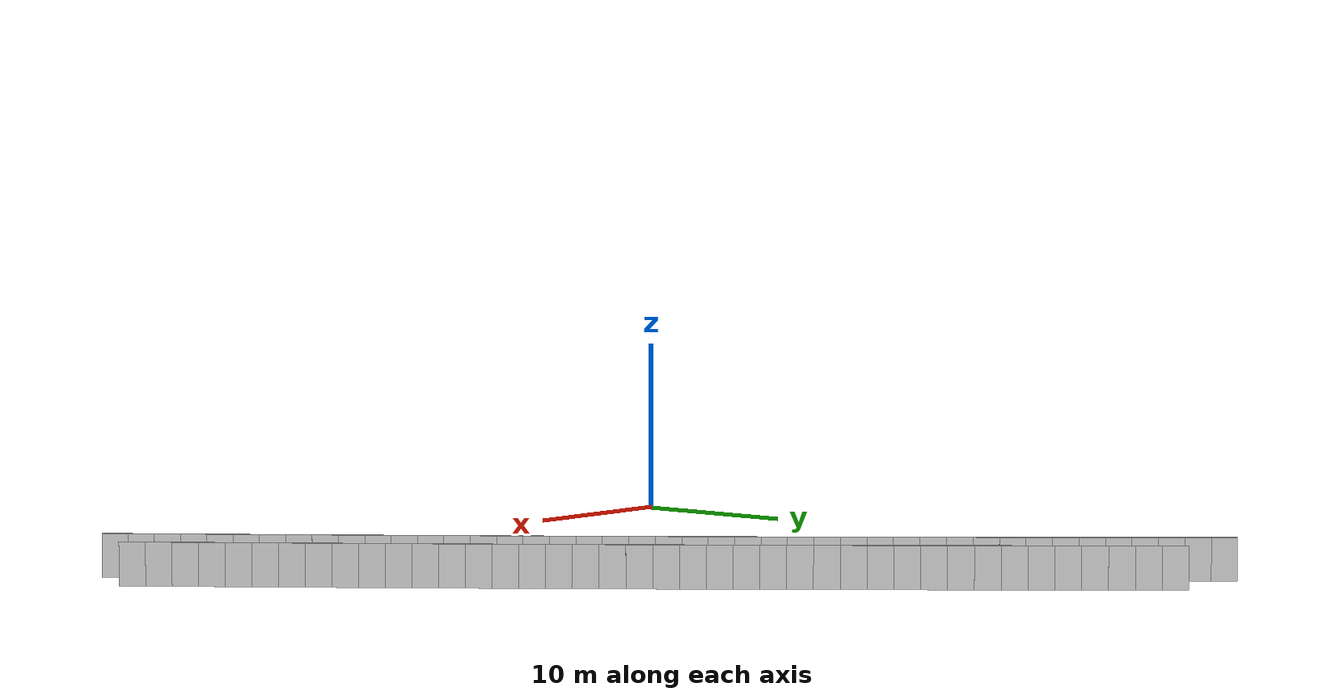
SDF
<?xml version="1.0" ?>
<sdf version="1.6">
  <model name="sps_4139">
    <pose frame="">0 0 0 0 -0 0</pose>
    <static>1</static>
    <self_collide>0</self_collide>
    <allow_auto_disable>0</allow_auto_disable>
    <link name="Wall10326">
      <kinematic>0</kinematic>
      <gravity>1</gravity>
      <self_collide>0</self_collide>
      <collision name="collision">
        <geometry>
          <box>
            <size>1.49655 0.15 2.5</size>
          </box>
        </geometry>
        <pose frame="">0 0 0 0 -0 0</pose>
      </collision>
      <visual name="visual">
        <geometry>
          <box>
            <size>1.49655 0.15 2.5</size>
          </box>
        </geometry>
        <pose frame="">0 0 0 0 -0 0</pose>
        <cast_shadows>1</cast_shadows>
        <transparency>0.0</transparency>
      </visual>
      <pose frame="">47.2911 0.43019 1.25 0 -0 2.211</pose>
    </link>
    <link name="Wall10327">
      <kinematic>0</kinematic>
      <gravity>1</gravity>
      <self_collide>0</self_collide>
      <collision name="collision">
        <geometry>
          <box>
            <size>1.49638 0.15 2.5</size>
          </box>
        </geometry>
        <pose frame="">0 0 0 0 -0 0</pose>
      </collision>
      <visual name="visual">
        <geometry>
          <box>
            <size>1.49638 0.15 2.5</size>
          </box>
        </geometry>
        <pose frame="">0 0 0 0 -0 0</pose>
        <cast_shadows>1</cast_shadows>
        <transparency>0.0</transparency>
      </visual>
      <pose frame="">46.3962 1.62959 1.25 0 -0 2.21262</pose>
    </link>
    <link name="Wall10328">
      <kinematic>0</kinematic>
      <gravity>1</gravity>
      <self_collide>0</self_collide>
      <collision name="collision">
        <geometry>
          <box>
            <size>1.49661 0.15 2.5</size>
          </box>
        </geometry>
        <pose frame="">0 0 0 0 -0 0</pose>
      </collision>
      <visual name="visual">
        <geometry>
          <box>
            <size>1.49661 0.15 2.5</size>
          </box>
        </geometry>
        <pose frame="">0 0 0 0 -0 0</pose>
        <cast_shadows>1</cast_shadows>
        <transparency>0.0</transparency>
      </visual>
      <pose frame="">45.4994 2.82759 1.25 0 -0 2.21418</pose>
    </link>
    <link name="Wall10329">
      <kinematic>0</kinematic>
      <gravity>1</gravity>
      <self_collide>0</self_collide>
      <collision name="collision">
        <geometry>
          <box>
            <size>1.49655 0.15 2.5</size>
          </box>
        </geometry>
        <pose frame="">0 0 0 0 -0 0</pose>
      </collision>
      <visual name="visual">
        <geometry>
          <box>
            <size>1.49655 0.15 2.5</size>
          </box>
        </geometry>
        <pose frame="">0 0 0 0 -0 0</pose>
        <cast_shadows>1</cast_shadows>
        <transparency>0.0</transparency>
      </visual>
      <pose frame="">44.6006 4.02428 1.25 0 -0 2.21569</pose>
    </link>
    <link name="Wall10330">
      <kinematic>0</kinematic>
      <gravity>1</gravity>
      <self_collide>0</self_collide>
      <collision name="collision">
        <geometry>
          <box>
            <size>1.49649 0.15 2.5</size>
          </box>
        </geometry>
        <pose frame="">0 0 0 0 -0 0</pose>
      </collision>
      <visual name="visual">
        <geometry>
          <box>
            <size>1.49649 0.15 2.5</size>
          </box>
        </geometry>
        <pose frame="">0 0 0 0 -0 0</pose>
        <cast_shadows>1</cast_shadows>
        <transparency>0.0</transparency>
      </visual>
      <pose frame="">43.7 5.21947 1.25 0 -0 2.21741</pose>
    </link>
    <link name="Wall10331">
      <kinematic>0</kinematic>
      <gravity>1</gravity>
      <self_collide>0</self_collide>
      <collision name="collision">
        <geometry>
          <box>
            <size>1.49649 0.15 2.5</size>
          </box>
        </geometry>
        <pose frame="">0 0 0 0 -0 0</pose>
      </collision>
      <visual name="visual">
        <geometry>
          <box>
            <size>1.49649 0.15 2.5</size>
          </box>
        </geometry>
        <pose frame="">0 0 0 0 -0 0</pose>
        <cast_shadows>1</cast_shadows>
        <transparency>0.0</transparency>
      </visual>
      <pose frame="">42.7975 6.41319 1.25 0 -0 2.21889</pose>
    </link>
    <link name="Wall10332">
      <kinematic>0</kinematic>
      <gravity>1</gravity>
      <self_collide>0</self_collide>
      <collision name="collision">
        <geometry>
          <box>
            <size>1.49643 0.15 2.5</size>
          </box>
        </geometry>
        <pose frame="">0 0 0 0 -0 0</pose>
      </collision>
      <visual name="visual">
        <geometry>
          <box>
            <size>1.49643 0.15 2.5</size>
          </box>
        </geometry>
        <pose frame="">0 0 0 0 -0 0</pose>
        <cast_shadows>1</cast_shadows>
        <transparency>0.0</transparency>
      </visual>
      <pose frame="">41.8932 7.60551 1.25 0 -0 2.22046</pose>
    </link>
    <link name="Wall10333">
      <kinematic>0</kinematic>
      <gravity>1</gravity>
      <self_collide>0</self_collide>
      <collision name="collision">
        <geometry>
          <box>
            <size>1.49649 0.15 2.5</size>
          </box>
        </geometry>
        <pose frame="">0 0 0 0 -0 0</pose>
      </collision>
      <visual name="visual">
        <geometry>
          <box>
            <size>1.49649 0.15 2.5</size>
          </box>
        </geometry>
        <pose frame="">0 0 0 0 -0 0</pose>
        <cast_shadows>1</cast_shadows>
        <transparency>0.0</transparency>
      </visual>
      <pose frame="">40.9871 8.7964 1.25 0 -0 2.22206</pose>
    </link>
    <link name="Wall10334">
      <kinematic>0</kinematic>
      <gravity>1</gravity>
      <self_collide>0</self_collide>
      <collision name="collision">
        <geometry>
          <box>
            <size>1.49664 0.15 2.5</size>
          </box>
        </geometry>
        <pose frame="">0 0 0 0 -0 0</pose>
      </collision>
      <visual name="visual">
        <geometry>
          <box>
            <size>1.49664 0.15 2.5</size>
          </box>
        </geometry>
        <pose frame="">0 0 0 0 -0 0</pose>
        <cast_shadows>1</cast_shadows>
        <transparency>0.0</transparency>
      </visual>
      <pose frame="">40.0788 9.98588 1.25 0 -0 2.22373</pose>
    </link>
    <link name="Wall10335">
      <kinematic>0</kinematic>
      <gravity>1</gravity>
      <self_collide>0</self_collide>
      <collision name="collision">
        <geometry>
          <box>
            <size>1.49642 0.15 2.5</size>
          </box>
        </geometry>
        <pose frame="">0 0 0 0 -0 0</pose>
      </collision>
      <visual name="visual">
        <geometry>
          <box>
            <size>1.49642 0.15 2.5</size>
          </box>
        </geometry>
        <pose frame="">0 0 0 0 -0 0</pose>
        <cast_shadows>1</cast_shadows>
        <transparency>0.0</transparency>
      </visual>
      <pose frame="">39.1688 11.1739 1.25 0 -0 2.22529</pose>
    </link>
    <link name="Wall10336">
      <kinematic>0</kinematic>
      <gravity>1</gravity>
      <self_collide>0</self_collide>
      <collision name="collision">
        <geometry>
          <box>
            <size>1.4965 0.15 2.5</size>
          </box>
        </geometry>
        <pose frame="">0 0 0 0 -0 0</pose>
      </collision>
      <visual name="visual">
        <geometry>
          <box>
            <size>1.4965 0.15 2.5</size>
          </box>
        </geometry>
        <pose frame="">0 0 0 0 -0 0</pose>
        <cast_shadows>1</cast_shadows>
        <transparency>0.0</transparency>
      </visual>
      <pose frame="">38.2569 12.3604 1.25 0 -0 2.22684</pose>
    </link>
    <link name="Wall10337">
      <kinematic>0</kinematic>
      <gravity>1</gravity>
      <self_collide>0</self_collide>
      <collision name="collision">
        <geometry>
          <box>
            <size>1.49654 0.15 2.5</size>
          </box>
        </geometry>
        <pose frame="">0 0 0 0 -0 0</pose>
      </collision>
      <visual name="visual">
        <geometry>
          <box>
            <size>1.49654 0.15 2.5</size>
          </box>
        </geometry>
        <pose frame="">0 0 0 0 -0 0</pose>
        <cast_shadows>1</cast_shadows>
        <transparency>0.0</transparency>
      </visual>
      <pose frame="">37.343 13.5455 1.25 0 -0 2.22847</pose>
    </link>
    <link name="Wall10338">
      <kinematic>0</kinematic>
      <gravity>1</gravity>
      <self_collide>0</self_collide>
      <collision name="collision">
        <geometry>
          <box>
            <size>1.4964 0.15 2.5</size>
          </box>
        </geometry>
        <pose frame="">0 0 0 0 -0 0</pose>
      </collision>
      <visual name="visual">
        <geometry>
          <box>
            <size>1.4964 0.15 2.5</size>
          </box>
        </geometry>
        <pose frame="">0 0 0 0 -0 0</pose>
        <cast_shadows>1</cast_shadows>
        <transparency>0.0</transparency>
      </visual>
      <pose frame="">36.4275 14.7292 1.25 0 -0 2.22988</pose>
    </link>
    <link name="Wall10339">
      <kinematic>0</kinematic>
      <gravity>1</gravity>
      <self_collide>0</self_collide>
      <collision name="collision">
        <geometry>
          <box>
            <size>1.49652 0.15 2.5</size>
          </box>
        </geometry>
        <pose frame="">0 0 0 0 -0 0</pose>
      </collision>
      <visual name="visual">
        <geometry>
          <box>
            <size>1.49652 0.15 2.5</size>
          </box>
        </geometry>
        <pose frame="">0 0 0 0 -0 0</pose>
        <cast_shadows>1</cast_shadows>
        <transparency>0.0</transparency>
      </visual>
      <pose frame="">35.5101 15.9115 1.25 0 -0 2.23152</pose>
    </link>
    <link name="Wall10340">
      <kinematic>0</kinematic>
      <gravity>1</gravity>
      <self_collide>0</self_collide>
      <collision name="collision">
        <geometry>
          <box>
            <size>1.4964 0.15 2.5</size>
          </box>
        </geometry>
        <pose frame="">0 0 0 0 -0 0</pose>
      </collision>
      <visual name="visual">
        <geometry>
          <box>
            <size>1.4964 0.15 2.5</size>
          </box>
        </geometry>
        <pose frame="">0 0 0 0 -0 0</pose>
        <cast_shadows>1</cast_shadows>
        <transparency>0.0</transparency>
      </visual>
      <pose frame="">34.5908 17.0923 1.25 0 -0 2.23313</pose>
    </link>
    <link name="Wall10341">
      <kinematic>0</kinematic>
      <gravity>1</gravity>
      <self_collide>0</self_collide>
      <collision name="collision">
        <geometry>
          <box>
            <size>1.49665 0.15 2.5</size>
          </box>
        </geometry>
        <pose frame="">0 0 0 0 -0 0</pose>
      </collision>
      <visual name="visual">
        <geometry>
          <box>
            <size>1.49665 0.15 2.5</size>
          </box>
        </geometry>
        <pose frame="">0 0 0 0 -0 0</pose>
        <cast_shadows>1</cast_shadows>
        <transparency>0.0</transparency>
      </visual>
      <pose frame="">33.6695 18.2716 1.25 0 -0 2.23481</pose>
    </link>
    <link name="Wall10342">
      <kinematic>0</kinematic>
      <gravity>1</gravity>
      <self_collide>0</self_collide>
      <collision name="collision">
        <geometry>
          <box>
            <size>1.49652 0.15 2.5</size>
          </box>
        </geometry>
        <pose frame="">0 0 0 0 -0 0</pose>
      </collision>
      <visual name="visual">
        <geometry>
          <box>
            <size>1.49652 0.15 2.5</size>
          </box>
        </geometry>
        <pose frame="">0 0 0 0 -0 0</pose>
        <cast_shadows>1</cast_shadows>
        <transparency>0.0</transparency>
      </visual>
      <pose frame="">32.7463 19.4495 1.25 0 -0 2.23628</pose>
    </link>
    <link name="Wall10343">
      <kinematic>0</kinematic>
      <gravity>1</gravity>
      <self_collide>0</self_collide>
      <collision name="collision">
        <geometry>
          <box>
            <size>1.49651 0.15 2.5</size>
          </box>
        </geometry>
        <pose frame="">0 0 0 0 -0 0</pose>
      </collision>
      <visual name="visual">
        <geometry>
          <box>
            <size>1.49651 0.15 2.5</size>
          </box>
        </geometry>
        <pose frame="">0 0 0 0 -0 0</pose>
        <cast_shadows>1</cast_shadows>
        <transparency>0.0</transparency>
      </visual>
      <pose frame="">31.8213 20.6259 1.25 0 -0 2.238</pose>
    </link>
    <link name="Wall10344">
      <kinematic>0</kinematic>
      <gravity>1</gravity>
      <self_collide>0</self_collide>
      <collision name="collision">
        <geometry>
          <box>
            <size>1.49651 0.15 2.5</size>
          </box>
        </geometry>
        <pose frame="">0 0 0 0 -0 0</pose>
      </collision>
      <visual name="visual">
        <geometry>
          <box>
            <size>1.49651 0.15 2.5</size>
          </box>
        </geometry>
        <pose frame="">0 0 0 0 -0 0</pose>
        <cast_shadows>1</cast_shadows>
        <transparency>0.0</transparency>
      </visual>
      <pose frame="">30.8943 21.8008 1.25 0 -0 2.23951</pose>
    </link>
    <link name="Wall10345">
      <kinematic>0</kinematic>
      <gravity>1</gravity>
      <self_collide>0</self_collide>
      <collision name="collision">
        <geometry>
          <box>
            <size>1.49666 0.15 2.5</size>
          </box>
        </geometry>
        <pose frame="">0 0 0 0 -0 0</pose>
      </collision>
      <visual name="visual">
        <geometry>
          <box>
            <size>1.49666 0.15 2.5</size>
          </box>
        </geometry>
        <pose frame="">0 0 0 0 -0 0</pose>
        <cast_shadows>1</cast_shadows>
        <transparency>0.0</transparency>
      </visual>
      <pose frame="">29.9655 22.9743 1.25 0 -0 2.24114</pose>
    </link>
    <link name="Wall10346">
      <kinematic>0</kinematic>
      <gravity>1</gravity>
      <self_collide>0</self_collide>
      <collision name="collision">
        <geometry>
          <box>
            <size>1.49654 0.15 2.5</size>
          </box>
        </geometry>
        <pose frame="">0 0 0 0 -0 0</pose>
      </collision>
      <visual name="visual">
        <geometry>
          <box>
            <size>1.49654 0.15 2.5</size>
          </box>
        </geometry>
        <pose frame="">0 0 0 0 -0 0</pose>
        <cast_shadows>1</cast_shadows>
        <transparency>0.0</transparency>
      </visual>
      <pose frame="">29.0349 24.1464 1.25 0 -0 2.24256</pose>
    </link>
    <link name="Wall10347">
      <kinematic>0</kinematic>
      <gravity>1</gravity>
      <self_collide>0</self_collide>
      <collision name="collision">
        <geometry>
          <box>
            <size>1.49642 0.15 2.5</size>
          </box>
        </geometry>
        <pose frame="">0 0 0 0 -0 0</pose>
      </collision>
      <visual name="visual">
        <geometry>
          <box>
            <size>1.49642 0.15 2.5</size>
          </box>
        </geometry>
        <pose frame="">0 0 0 0 -0 0</pose>
        <cast_shadows>1</cast_shadows>
        <transparency>0.0</transparency>
      </visual>
      <pose frame="">28.1025 25.3169 1.25 0 -0 2.24435</pose>
    </link>
    <link name="Wall10348">
      <kinematic>0</kinematic>
      <gravity>1</gravity>
      <self_collide>0</self_collide>
      <collision name="collision">
        <geometry>
          <box>
            <size>1.49657 0.15 2.5</size>
          </box>
        </geometry>
        <pose frame="">0 0 0 0 -0 0</pose>
      </collision>
      <visual name="visual">
        <geometry>
          <box>
            <size>1.49657 0.15 2.5</size>
          </box>
        </geometry>
        <pose frame="">0 0 0 0 -0 0</pose>
        <cast_shadows>1</cast_shadows>
        <transparency>0.0</transparency>
      </visual>
      <pose frame="">27.1682 26.4859 1.25 0 -0 2.24578</pose>
    </link>
    <link name="Wall10349">
      <kinematic>0</kinematic>
      <gravity>1</gravity>
      <self_collide>0</self_collide>
      <collision name="collision">
        <geometry>
          <box>
            <size>1.49633 0.15 2.5</size>
          </box>
        </geometry>
        <pose frame="">0 0 0 0 -0 0</pose>
      </collision>
      <visual name="visual">
        <geometry>
          <box>
            <size>1.49633 0.15 2.5</size>
          </box>
        </geometry>
        <pose frame="">0 0 0 0 -0 0</pose>
        <cast_shadows>1</cast_shadows>
        <transparency>0.0</transparency>
      </visual>
      <pose frame="">26.2321 27.6534 1.25 0 -0 2.24747</pose>
    </link>
    <link name="Wall10350">
      <kinematic>0</kinematic>
      <gravity>1</gravity>
      <self_collide>0</self_collide>
      <collision name="collision">
        <geometry>
          <box>
            <size>1.4966 0.15 2.5</size>
          </box>
        </geometry>
        <pose frame="">0 0 0 0 -0 0</pose>
      </collision>
      <visual name="visual">
        <geometry>
          <box>
            <size>1.4966 0.15 2.5</size>
          </box>
        </geometry>
        <pose frame="">0 0 0 0 -0 0</pose>
        <cast_shadows>1</cast_shadows>
        <transparency>0.0</transparency>
      </visual>
      <pose frame="">25.2942 28.8194 1.25 0 -0 2.249</pose>
    </link>
    <link name="Wall10351">
      <kinematic>0</kinematic>
      <gravity>1</gravity>
      <self_collide>0</self_collide>
      <collision name="collision">
        <geometry>
          <box>
            <size>1.49647 0.15 2.5</size>
          </box>
        </geometry>
        <pose frame="">0 0 0 0 -0 0</pose>
      </collision>
      <visual name="visual">
        <geometry>
          <box>
            <size>1.49647 0.15 2.5</size>
          </box>
        </geometry>
        <pose frame="">0 0 0 0 -0 0</pose>
        <cast_shadows>1</cast_shadows>
        <transparency>0.0</transparency>
      </visual>
      <pose frame="">24.3543 29.984 1.25 0 -0 2.25065</pose>
    </link>
    <link name="Wall10352">
      <kinematic>0</kinematic>
      <gravity>1</gravity>
      <self_collide>0</self_collide>
      <collision name="collision">
        <geometry>
          <box>
            <size>1.49658 0.15 2.5</size>
          </box>
        </geometry>
        <pose frame="">0 0 0 0 -0 0</pose>
      </collision>
      <visual name="visual">
        <geometry>
          <box>
            <size>1.49658 0.15 2.5</size>
          </box>
        </geometry>
        <pose frame="">0 0 0 0 -0 0</pose>
        <cast_shadows>1</cast_shadows>
        <transparency>0.0</transparency>
      </visual>
      <pose frame="">23.4126 31.1471 1.25 0 -0 2.25216</pose>
    </link>
    <link name="Wall10353">
      <kinematic>0</kinematic>
      <gravity>1</gravity>
      <self_collide>0</self_collide>
      <collision name="collision">
        <geometry>
          <box>
            <size>1.49625 0.15 2.5</size>
          </box>
        </geometry>
        <pose frame="">0 0 0 0 -0 0</pose>
      </collision>
      <visual name="visual">
        <geometry>
          <box>
            <size>1.49625 0.15 2.5</size>
          </box>
        </geometry>
        <pose frame="">0 0 0 0 -0 0</pose>
        <cast_shadows>1</cast_shadows>
        <transparency>0.0</transparency>
      </visual>
      <pose frame="">22.469 32.3085 1.25 0 -0 2.25402</pose>
    </link>
    <link name="Wall10354">
      <kinematic>0</kinematic>
      <gravity>1</gravity>
      <self_collide>0</self_collide>
      <collision name="collision">
        <geometry>
          <box>
            <size>1.49634 0.15 2.5</size>
          </box>
        </geometry>
        <pose frame="">0 0 0 0 -0 0</pose>
      </collision>
      <visual name="visual">
        <geometry>
          <box>
            <size>1.49634 0.15 2.5</size>
          </box>
        </geometry>
        <pose frame="">0 0 0 0 -0 0</pose>
        <cast_shadows>1</cast_shadows>
        <transparency>0.0</transparency>
      </visual>
      <pose frame="">21.5236 33.4683 1.25 0 -0 2.25539</pose>
    </link>
    <link name="Wall10355">
      <kinematic>0</kinematic>
      <gravity>1</gravity>
      <self_collide>0</self_collide>
      <collision name="collision">
        <geometry>
          <box>
            <size>1.49668 0.15 2.5</size>
          </box>
        </geometry>
        <pose frame="">0 0 0 0 -0 0</pose>
      </collision>
      <visual name="visual">
        <geometry>
          <box>
            <size>1.49668 0.15 2.5</size>
          </box>
        </geometry>
        <pose frame="">0 0 0 0 -0 0</pose>
        <cast_shadows>1</cast_shadows>
        <transparency>0.0</transparency>
      </visual>
      <pose frame="">20.5763 34.6269 1.25 0 -0 2.25689</pose>
    </link>
    <link name="Wall10356">
      <kinematic>0</kinematic>
      <gravity>1</gravity>
      <self_collide>0</self_collide>
      <collision name="collision">
        <geometry>
          <box>
            <size>1.49643 0.15 2.5</size>
          </box>
        </geometry>
        <pose frame="">0 0 0 0 -0 0</pose>
      </collision>
      <visual name="visual">
        <geometry>
          <box>
            <size>1.49643 0.15 2.5</size>
          </box>
        </geometry>
        <pose frame="">0 0 0 0 -0 0</pose>
        <cast_shadows>1</cast_shadows>
        <transparency>0.0</transparency>
      </visual>
      <pose frame="">19.6273 35.784 1.25 0 -0 2.25862</pose>
    </link>
    <link name="Wall10357">
      <kinematic>0</kinematic>
      <gravity>1</gravity>
      <self_collide>0</self_collide>
      <collision name="collision">
        <geometry>
          <box>
            <size>1.49666 0.15 2.5</size>
          </box>
        </geometry>
        <pose frame="">0 0 0 0 -0 0</pose>
      </collision>
      <visual name="visual">
        <geometry>
          <box>
            <size>1.49666 0.15 2.5</size>
          </box>
        </geometry>
        <pose frame="">0 0 0 0 -0 0</pose>
        <cast_shadows>1</cast_shadows>
        <transparency>0.0</transparency>
      </visual>
      <pose frame="">18.6764 36.9396 1.25 0 -0 2.26002</pose>
    </link>
    <link name="Wall10358">
      <kinematic>0</kinematic>
      <gravity>1</gravity>
      <self_collide>0</self_collide>
      <collision name="collision">
        <geometry>
          <box>
            <size>1.49655 0.15 2.5</size>
          </box>
        </geometry>
        <pose frame="">0 0 0 0 -0 0</pose>
      </collision>
      <visual name="visual">
        <geometry>
          <box>
            <size>1.49655 0.15 2.5</size>
          </box>
        </geometry>
        <pose frame="">0 0 0 0 -0 0</pose>
        <cast_shadows>1</cast_shadows>
        <transparency>0.0</transparency>
      </visual>
      <pose frame="">17.7237 38.0938 1.25 0 -0 2.26167</pose>
    </link>
    <link name="Wall10359">
      <kinematic>0</kinematic>
      <gravity>1</gravity>
      <self_collide>0</self_collide>
      <collision name="collision">
        <geometry>
          <box>
            <size>1.49632 0.15 2.5</size>
          </box>
        </geometry>
        <pose frame="">0 0 0 0 -0 0</pose>
      </collision>
      <visual name="visual">
        <geometry>
          <box>
            <size>1.49632 0.15 2.5</size>
          </box>
        </geometry>
        <pose frame="">0 0 0 0 -0 0</pose>
        <cast_shadows>1</cast_shadows>
        <transparency>0.0</transparency>
      </visual>
      <pose frame="">16.7692 39.2463 1.25 0 -0 2.26333</pose>
    </link>
    <link name="Wall10360">
      <kinematic>0</kinematic>
      <gravity>1</gravity>
      <self_collide>0</self_collide>
      <collision name="collision">
        <geometry>
          <box>
            <size>1.49655 0.15 2.5</size>
          </box>
        </geometry>
        <pose frame="">0 0 0 0 -0 0</pose>
      </collision>
      <visual name="visual">
        <geometry>
          <box>
            <size>1.49655 0.15 2.5</size>
          </box>
        </geometry>
        <pose frame="">0 0 0 0 -0 0</pose>
        <cast_shadows>1</cast_shadows>
        <transparency>0.0</transparency>
      </visual>
      <pose frame="">15.8129 40.3973 1.25 0 -0 2.26479</pose>
    </link>
    <link name="Wall10361">
      <kinematic>0</kinematic>
      <gravity>1</gravity>
      <self_collide>0</self_collide>
      <collision name="collision">
        <geometry>
          <box>
            <size>1.49644 0.15 2.5</size>
          </box>
        </geometry>
        <pose frame="">0 0 0 0 -0 0</pose>
      </collision>
      <visual name="visual">
        <geometry>
          <box>
            <size>1.49644 0.15 2.5</size>
          </box>
        </geometry>
        <pose frame="">0 0 0 0 -0 0</pose>
        <cast_shadows>1</cast_shadows>
        <transparency>0.0</transparency>
      </visual>
      <pose frame="">14.8547 41.5468 1.25 0 -0 2.26655</pose>
    </link>
    <link name="Wall10362">
      <kinematic>0</kinematic>
      <gravity>1</gravity>
      <self_collide>0</self_collide>
      <collision name="collision">
        <geometry>
          <box>
            <size>1.49656 0.15 2.5</size>
          </box>
        </geometry>
        <pose frame="">0 0 0 0 -0 0</pose>
      </collision>
      <visual name="visual">
        <geometry>
          <box>
            <size>1.49656 0.15 2.5</size>
          </box>
        </geometry>
        <pose frame="">0 0 0 0 -0 0</pose>
        <cast_shadows>1</cast_shadows>
        <transparency>0.0</transparency>
      </visual>
      <pose frame="">13.8947 42.6948 1.25 0 -0 2.26792</pose>
    </link>
    <link name="Wall10363">
      <kinematic>0</kinematic>
      <gravity>1</gravity>
      <self_collide>0</self_collide>
      <collision name="collision">
        <geometry>
          <box>
            <size>1.49664 0.15 2.5</size>
          </box>
        </geometry>
        <pose frame="">0 0 0 0 -0 0</pose>
      </collision>
      <visual name="visual">
        <geometry>
          <box>
            <size>1.49664 0.15 2.5</size>
          </box>
        </geometry>
        <pose frame="">0 0 0 0 -0 0</pose>
        <cast_shadows>1</cast_shadows>
        <transparency>0.0</transparency>
      </visual>
      <pose frame="">12.9329 43.8414 1.25 0 -0 2.26963</pose>
    </link>
    <link name="Wall10364">
      <kinematic>0</kinematic>
      <gravity>1</gravity>
      <self_collide>0</self_collide>
      <collision name="collision">
        <geometry>
          <box>
            <size>1.49652 0.15 2.5</size>
          </box>
        </geometry>
        <pose frame="">0 0 0 0 -0 0</pose>
      </collision>
      <visual name="visual">
        <geometry>
          <box>
            <size>1.49652 0.15 2.5</size>
          </box>
        </geometry>
        <pose frame="">0 0 0 0 -0 0</pose>
        <cast_shadows>1</cast_shadows>
        <transparency>0.0</transparency>
      </visual>
      <pose frame="">11.9691 44.9864 1.25 0 -0 2.27125</pose>
    </link>
    <link name="Wall10365">
      <kinematic>0</kinematic>
      <gravity>1</gravity>
      <self_collide>0</self_collide>
      <collision name="collision">
        <geometry>
          <box>
            <size>1.49633 0.15 2.5</size>
          </box>
        </geometry>
        <pose frame="">0 0 0 0 -0 0</pose>
      </collision>
      <visual name="visual">
        <geometry>
          <box>
            <size>1.49633 0.15 2.5</size>
          </box>
        </geometry>
        <pose frame="">0 0 0 0 -0 0</pose>
        <cast_shadows>1</cast_shadows>
        <transparency>0.0</transparency>
      </visual>
      <pose frame="">11.0037 46.1298 1.25 0 -0 2.27274</pose>
    </link>
    <link name="Wall10366">
      <kinematic>0</kinematic>
      <gravity>1</gravity>
      <self_collide>0</self_collide>
      <collision name="collision">
        <geometry>
          <box>
            <size>1.49661 0.15 2.5</size>
          </box>
        </geometry>
        <pose frame="">0 0 0 0 -0 0</pose>
      </collision>
      <visual name="visual">
        <geometry>
          <box>
            <size>1.49661 0.15 2.5</size>
          </box>
        </geometry>
        <pose frame="">0 0 0 0 -0 0</pose>
        <cast_shadows>1</cast_shadows>
        <transparency>0.0</transparency>
      </visual>
      <pose frame="">10.0366 47.2717 1.25 0 -0 2.27435</pose>
    </link>
    <link name="Wall10367">
      <kinematic>0</kinematic>
      <gravity>1</gravity>
      <self_collide>0</self_collide>
      <collision name="collision">
        <geometry>
          <box>
            <size>1.4965 0.15 2.5</size>
          </box>
        </geometry>
        <pose frame="">0 0 0 0 -0 0</pose>
      </collision>
      <visual name="visual">
        <geometry>
          <box>
            <size>1.4965 0.15 2.5</size>
          </box>
        </geometry>
        <pose frame="">0 0 0 0 -0 0</pose>
        <cast_shadows>1</cast_shadows>
        <transparency>0.0</transparency>
      </visual>
      <pose frame="">9.06747 48.4121 1.25 0 -0 2.27596</pose>
    </link>
    <link name="Wall10368">
      <kinematic>0</kinematic>
      <gravity>1</gravity>
      <self_collide>0</self_collide>
      <collision name="collision">
        <geometry>
          <box>
            <size>1.49648 0.15 2.5</size>
          </box>
        </geometry>
        <pose frame="">0 0 0 0 -0 0</pose>
      </collision>
      <visual name="visual">
        <geometry>
          <box>
            <size>1.49648 0.15 2.5</size>
          </box>
        </geometry>
        <pose frame="">0 0 0 0 -0 0</pose>
        <cast_shadows>1</cast_shadows>
        <transparency>0.0</transparency>
      </visual>
      <pose frame="">8.09658 49.5509 1.25 0 -0 2.27758</pose>
    </link>
    <link name="Wall10924">
      <kinematic>0</kinematic>
      <gravity>1</gravity>
      <self_collide>0</self_collide>
      <collision name="collision">
        <geometry>
          <box>
            <size>1.50309 0.15 2.5</size>
          </box>
        </geometry>
        <pose frame="">0 0 0 0 -0 0</pose>
      </collision>
      <visual name="visual">
        <geometry>
          <box>
            <size>1.50309 0.15 2.5</size>
          </box>
        </geometry>
        <pose frame="">0 0 0 0 -0 0</pose>
        <cast_shadows>1</cast_shadows>
        <transparency>0.0</transparency>
      </visual>
      <pose frame="">49.7121 4.10811 1.25 0 -0 2.21262</pose>
    </link>
    <link name="Wall10925">
      <kinematic>0</kinematic>
      <gravity>1</gravity>
      <self_collide>0</self_collide>
      <collision name="collision">
        <geometry>
          <box>
            <size>1.50299 0.15 2.5</size>
          </box>
        </geometry>
        <pose frame="">0 0 0 0 -0 0</pose>
      </collision>
      <visual name="visual">
        <geometry>
          <box>
            <size>1.50299 0.15 2.5</size>
          </box>
        </geometry>
        <pose frame="">0 0 0 0 -0 0</pose>
        <cast_shadows>1</cast_shadows>
        <transparency>0.0</transparency>
      </visual>
      <pose frame="">48.8115 5.31139 1.25 0 -0 2.21409</pose>
    </link>
    <link name="Wall10926">
      <kinematic>0</kinematic>
      <gravity>1</gravity>
      <self_collide>0</self_collide>
      <collision name="collision">
        <geometry>
          <box>
            <size>1.50316 0.15 2.5</size>
          </box>
        </geometry>
        <pose frame="">0 0 0 0 -0 0</pose>
      </collision>
      <visual name="visual">
        <geometry>
          <box>
            <size>1.50316 0.15 2.5</size>
          </box>
        </geometry>
        <pose frame="">0 0 0 0 -0 0</pose>
        <cast_shadows>1</cast_shadows>
        <transparency>0.0</transparency>
      </visual>
      <pose frame="">47.9089 6.51329 1.25 0 -0 2.21573</pose>
    </link>
    <link name="Wall10927">
      <kinematic>0</kinematic>
      <gravity>1</gravity>
      <self_collide>0</self_collide>
      <collision name="collision">
        <geometry>
          <box>
            <size>1.50306 0.15 2.5</size>
          </box>
        </geometry>
        <pose frame="">0 0 0 0 -0 0</pose>
      </collision>
      <visual name="visual">
        <geometry>
          <box>
            <size>1.50306 0.15 2.5</size>
          </box>
        </geometry>
        <pose frame="">0 0 0 0 -0 0</pose>
        <cast_shadows>1</cast_shadows>
        <transparency>0.0</transparency>
      </visual>
      <pose frame="">47.0044 7.71379 1.25 0 -0 2.21726</pose>
    </link>
    <link name="Wall10928">
      <kinematic>0</kinematic>
      <gravity>1</gravity>
      <self_collide>0</self_collide>
      <collision name="collision">
        <geometry>
          <box>
            <size>1.50295 0.15 2.5</size>
          </box>
        </geometry>
        <pose frame="">0 0 0 0 -0 0</pose>
      </collision>
      <visual name="visual">
        <geometry>
          <box>
            <size>1.50295 0.15 2.5</size>
          </box>
        </geometry>
        <pose frame="">0 0 0 0 -0 0</pose>
        <cast_shadows>1</cast_shadows>
        <transparency>0.0</transparency>
      </visual>
      <pose frame="">46.098 8.91279 1.25 0 -0 2.21885</pose>
    </link>
    <link name="Wall10929">
      <kinematic>0</kinematic>
      <gravity>1</gravity>
      <self_collide>0</self_collide>
      <collision name="collision">
        <geometry>
          <box>
            <size>1.50307 0.15 2.5</size>
          </box>
        </geometry>
        <pose frame="">0 0 0 0 -0 0</pose>
      </collision>
      <visual name="visual">
        <geometry>
          <box>
            <size>1.50307 0.15 2.5</size>
          </box>
        </geometry>
        <pose frame="">0 0 0 0 -0 0</pose>
        <cast_shadows>1</cast_shadows>
        <transparency>0.0</transparency>
      </visual>
      <pose frame="">45.1898 10.1103 1.25 0 -0 2.22057</pose>
    </link>
    <link name="Wall10930">
      <kinematic>0</kinematic>
      <gravity>1</gravity>
      <self_collide>0</self_collide>
      <collision name="collision">
        <geometry>
          <box>
            <size>1.50306 0.15 2.5</size>
          </box>
        </geometry>
        <pose frame="">0 0 0 0 -0 0</pose>
      </collision>
      <visual name="visual">
        <geometry>
          <box>
            <size>1.50306 0.15 2.5</size>
          </box>
        </geometry>
        <pose frame="">0 0 0 0 -0 0</pose>
        <cast_shadows>1</cast_shadows>
        <transparency>0.0</transparency>
      </visual>
      <pose frame="">44.2795 11.3064 1.25 0 -0 2.2221</pose>
    </link>
    <link name="Wall10931">
      <kinematic>0</kinematic>
      <gravity>1</gravity>
      <self_collide>0</self_collide>
      <collision name="collision">
        <geometry>
          <box>
            <size>1.50325 0.15 2.5</size>
          </box>
        </geometry>
        <pose frame="">0 0 0 0 -0 0</pose>
      </collision>
      <visual name="visual">
        <geometry>
          <box>
            <size>1.50325 0.15 2.5</size>
          </box>
        </geometry>
        <pose frame="">0 0 0 0 -0 0</pose>
        <cast_shadows>1</cast_shadows>
        <transparency>0.0</transparency>
      </visual>
      <pose frame="">43.3674 12.5012 1.25 0 -0 2.22354</pose>
    </link>
    <link name="Wall10932">
      <kinematic>0</kinematic>
      <gravity>1</gravity>
      <self_collide>0</self_collide>
      <collision name="collision">
        <geometry>
          <box>
            <size>1.50298 0.15 2.5</size>
          </box>
        </geometry>
        <pose frame="">0 0 0 0 -0 0</pose>
      </collision>
      <visual name="visual">
        <geometry>
          <box>
            <size>1.50298 0.15 2.5</size>
          </box>
        </geometry>
        <pose frame="">0 0 0 0 -0 0</pose>
        <cast_shadows>1</cast_shadows>
        <transparency>0.0</transparency>
      </visual>
      <pose frame="">42.4534 13.6945 1.25 0 -0 2.22531</pose>
    </link>
    <link name="Wall10933">
      <kinematic>0</kinematic>
      <gravity>1</gravity>
      <self_collide>0</self_collide>
      <collision name="collision">
        <geometry>
          <box>
            <size>1.50315 0.15 2.5</size>
          </box>
        </geometry>
        <pose frame="">0 0 0 0 -0 0</pose>
      </collision>
      <visual name="visual">
        <geometry>
          <box>
            <size>1.50315 0.15 2.5</size>
          </box>
        </geometry>
        <pose frame="">0 0 0 0 -0 0</pose>
        <cast_shadows>1</cast_shadows>
        <transparency>0.0</transparency>
      </visual>
      <pose frame="">41.5374 14.8862 1.25 0 -0 2.22692</pose>
    </link>
    <link name="Wall10934">
      <kinematic>0</kinematic>
      <gravity>1</gravity>
      <self_collide>0</self_collide>
      <collision name="collision">
        <geometry>
          <box>
            <size>1.50299 0.15 2.5</size>
          </box>
        </geometry>
        <pose frame="">0 0 0 0 -0 0</pose>
      </collision>
      <visual name="visual">
        <geometry>
          <box>
            <size>1.50299 0.15 2.5</size>
          </box>
        </geometry>
        <pose frame="">0 0 0 0 -0 0</pose>
        <cast_shadows>1</cast_shadows>
        <transparency>0.0</transparency>
      </visual>
      <pose frame="">40.6196 16.0765 1.25 0 -0 2.22838</pose>
    </link>
    <link name="Wall10935">
      <kinematic>0</kinematic>
      <gravity>1</gravity>
      <self_collide>0</self_collide>
      <collision name="collision">
        <geometry>
          <box>
            <size>1.50293 0.15 2.5</size>
          </box>
        </geometry>
        <pose frame="">0 0 0 0 -0 0</pose>
      </collision>
      <visual name="visual">
        <geometry>
          <box>
            <size>1.50293 0.15 2.5</size>
          </box>
        </geometry>
        <pose frame="">0 0 0 0 -0 0</pose>
        <cast_shadows>1</cast_shadows>
        <transparency>0.0</transparency>
      </visual>
      <pose frame="">39.6999 17.2653 1.25 0 -0 2.23006</pose>
    </link>
    <link name="Wall10936">
      <kinematic>0</kinematic>
      <gravity>1</gravity>
      <self_collide>0</self_collide>
      <collision name="collision">
        <geometry>
          <box>
            <size>1.50325 0.15 2.5</size>
          </box>
        </geometry>
        <pose frame="">0 0 0 0 -0 0</pose>
      </collision>
      <visual name="visual">
        <geometry>
          <box>
            <size>1.50325 0.15 2.5</size>
          </box>
        </geometry>
        <pose frame="">0 0 0 0 -0 0</pose>
        <cast_shadows>1</cast_shadows>
        <transparency>0.0</transparency>
      </visual>
      <pose frame="">38.7783 18.4527 1.25 0 -0 2.23159</pose>
    </link>
    <link name="Wall10937">
      <kinematic>0</kinematic>
      <gravity>1</gravity>
      <self_collide>0</self_collide>
      <collision name="collision">
        <geometry>
          <box>
            <size>1.50293 0.15 2.5</size>
          </box>
        </geometry>
        <pose frame="">0 0 0 0 -0 0</pose>
      </collision>
      <visual name="visual">
        <geometry>
          <box>
            <size>1.50293 0.15 2.5</size>
          </box>
        </geometry>
        <pose frame="">0 0 0 0 -0 0</pose>
        <cast_shadows>1</cast_shadows>
        <transparency>0.0</transparency>
      </visual>
      <pose frame="">37.8549 19.6387 1.25 0 -0 2.23309</pose>
    </link>
    <link name="Wall10938">
      <kinematic>0</kinematic>
      <gravity>1</gravity>
      <self_collide>0</self_collide>
      <collision name="collision">
        <geometry>
          <box>
            <size>1.50322 0.15 2.5</size>
          </box>
        </geometry>
        <pose frame="">0 0 0 0 -0 0</pose>
      </collision>
      <visual name="visual">
        <geometry>
          <box>
            <size>1.50322 0.15 2.5</size>
          </box>
        </geometry>
        <pose frame="">0 0 0 0 -0 0</pose>
        <cast_shadows>1</cast_shadows>
        <transparency>0.0</transparency>
      </visual>
      <pose frame="">36.9296 20.8232 1.25 0 -0 2.2348</pose>
    </link>
    <link name="Wall10939">
      <kinematic>0</kinematic>
      <gravity>1</gravity>
      <self_collide>0</self_collide>
      <collision name="collision">
        <geometry>
          <box>
            <size>1.50305 0.15 2.5</size>
          </box>
        </geometry>
        <pose frame="">0 0 0 0 -0 0</pose>
      </collision>
      <visual name="visual">
        <geometry>
          <box>
            <size>1.50305 0.15 2.5</size>
          </box>
        </geometry>
        <pose frame="">0 0 0 0 -0 0</pose>
        <cast_shadows>1</cast_shadows>
        <transparency>0.0</transparency>
      </visual>
      <pose frame="">36.0023 22.0062 1.25 0 -0 2.23643</pose>
    </link>
    <link name="Wall10940">
      <kinematic>0</kinematic>
      <gravity>1</gravity>
      <self_collide>0</self_collide>
      <collision name="collision">
        <geometry>
          <box>
            <size>1.50319 0.15 2.5</size>
          </box>
        </geometry>
        <pose frame="">0 0 0 0 -0 0</pose>
      </collision>
      <visual name="visual">
        <geometry>
          <box>
            <size>1.50319 0.15 2.5</size>
          </box>
        </geometry>
        <pose frame="">0 0 0 0 -0 0</pose>
        <cast_shadows>1</cast_shadows>
        <transparency>0.0</transparency>
      </visual>
      <pose frame="">35.0732 23.1878 1.25 0 -0 2.23786</pose>
    </link>
    <link name="Wall10941">
      <kinematic>0</kinematic>
      <gravity>1</gravity>
      <self_collide>0</self_collide>
      <collision name="collision">
        <geometry>
          <box>
            <size>1.50289 0.15 2.5</size>
          </box>
        </geometry>
        <pose frame="">0 0 0 0 -0 0</pose>
      </collision>
      <visual name="visual">
        <geometry>
          <box>
            <size>1.50289 0.15 2.5</size>
          </box>
        </geometry>
        <pose frame="">0 0 0 0 -0 0</pose>
        <cast_shadows>1</cast_shadows>
        <transparency>0.0</transparency>
      </visual>
      <pose frame="">34.1424 24.3679 1.25 0 -0 2.23951</pose>
    </link>
    <link name="Wall10942">
      <kinematic>0</kinematic>
      <gravity>1</gravity>
      <self_collide>0</self_collide>
      <collision name="collision">
        <geometry>
          <box>
            <size>1.50308 0.15 2.5</size>
          </box>
        </geometry>
        <pose frame="">0 0 0 0 -0 0</pose>
      </collision>
      <visual name="visual">
        <geometry>
          <box>
            <size>1.50308 0.15 2.5</size>
          </box>
        </geometry>
        <pose frame="">0 0 0 0 -0 0</pose>
        <cast_shadows>1</cast_shadows>
        <transparency>0.0</transparency>
      </visual>
      <pose frame="">33.2096 25.5464 1.25 0 -0 2.24117</pose>
    </link>
    <link name="Wall10943">
      <kinematic>0</kinematic>
      <gravity>1</gravity>
      <self_collide>0</self_collide>
      <collision name="collision">
        <geometry>
          <box>
            <size>1.50298 0.15 2.5</size>
          </box>
        </geometry>
        <pose frame="">0 0 0 0 -0 0</pose>
      </collision>
      <visual name="visual">
        <geometry>
          <box>
            <size>1.50298 0.15 2.5</size>
          </box>
        </geometry>
        <pose frame="">0 0 0 0 -0 0</pose>
        <cast_shadows>1</cast_shadows>
        <transparency>0.0</transparency>
      </visual>
      <pose frame="">32.275 26.7235 1.25 0 -0 2.24252</pose>
    </link>
    <link name="Wall10944">
      <kinematic>0</kinematic>
      <gravity>1</gravity>
      <self_collide>0</self_collide>
      <collision name="collision">
        <geometry>
          <box>
            <size>1.50324 0.15 2.5</size>
          </box>
        </geometry>
        <pose frame="">0 0 0 0 -0 0</pose>
      </collision>
      <visual name="visual">
        <geometry>
          <box>
            <size>1.50324 0.15 2.5</size>
          </box>
        </geometry>
        <pose frame="">0 0 0 0 -0 0</pose>
        <cast_shadows>1</cast_shadows>
        <transparency>0.0</transparency>
      </visual>
      <pose frame="">31.3385 27.8992 1.25 0 -0 2.24431</pose>
    </link>
    <link name="Wall10945">
      <kinematic>0</kinematic>
      <gravity>1</gravity>
      <self_collide>0</self_collide>
      <collision name="collision">
        <geometry>
          <box>
            <size>1.50299 0.15 2.5</size>
          </box>
        </geometry>
        <pose frame="">0 0 0 0 -0 0</pose>
      </collision>
      <visual name="visual">
        <geometry>
          <box>
            <size>1.50299 0.15 2.5</size>
          </box>
        </geometry>
        <pose frame="">0 0 0 0 -0 0</pose>
        <cast_shadows>1</cast_shadows>
        <transparency>0.0</transparency>
      </visual>
      <pose frame="">30.4 29.0734 1.25 0 -0 2.24579</pose>
    </link>
    <link name="Wall10946">
      <kinematic>0</kinematic>
      <gravity>1</gravity>
      <self_collide>0</self_collide>
      <collision name="collision">
        <geometry>
          <box>
            <size>1.50312 0.15 2.5</size>
          </box>
        </geometry>
        <pose frame="">0 0 0 0 -0 0</pose>
      </collision>
      <visual name="visual">
        <geometry>
          <box>
            <size>1.50312 0.15 2.5</size>
          </box>
        </geometry>
        <pose frame="">0 0 0 0 -0 0</pose>
        <cast_shadows>1</cast_shadows>
        <transparency>0.0</transparency>
      </visual>
      <pose frame="">29.4599 30.2461 1.25 0 -0 2.24739</pose>
    </link>
    <link name="Wall10947">
      <kinematic>0</kinematic>
      <gravity>1</gravity>
      <self_collide>0</self_collide>
      <collision name="collision">
        <geometry>
          <box>
            <size>1.50282 0.15 2.5</size>
          </box>
        </geometry>
        <pose frame="">0 0 0 0 -0 0</pose>
      </collision>
      <visual name="visual">
        <geometry>
          <box>
            <size>1.50282 0.15 2.5</size>
          </box>
        </geometry>
        <pose frame="">0 0 0 0 -0 0</pose>
        <cast_shadows>1</cast_shadows>
        <transparency>0.0</transparency>
      </visual>
      <pose frame="">28.5176 31.417 1.25 0 -0 2.24948</pose>
    </link>
    <link name="Wall10948">
      <kinematic>0</kinematic>
      <gravity>1</gravity>
      <self_collide>0</self_collide>
      <collision name="collision">
        <geometry>
          <box>
            <size>1.50309 0.15 2.5</size>
          </box>
        </geometry>
        <pose frame="">0 0 0 0 -0 0</pose>
      </collision>
      <visual name="visual">
        <geometry>
          <box>
            <size>1.50309 0.15 2.5</size>
          </box>
        </geometry>
        <pose frame="">0 0 0 0 -0 0</pose>
        <cast_shadows>1</cast_shadows>
        <transparency>0.0</transparency>
      </visual>
      <pose frame="">27.5734 32.5864 1.25 0 -0 2.25053</pose>
    </link>
    <link name="Wall10949">
      <kinematic>0</kinematic>
      <gravity>1</gravity>
      <self_collide>0</self_collide>
      <collision name="collision">
        <geometry>
          <box>
            <size>1.50303 0.15 2.5</size>
          </box>
        </geometry>
        <pose frame="">0 0 0 0 -0 0</pose>
      </collision>
      <visual name="visual">
        <geometry>
          <box>
            <size>1.50303 0.15 2.5</size>
          </box>
        </geometry>
        <pose frame="">0 0 0 0 -0 0</pose>
        <cast_shadows>1</cast_shadows>
        <transparency>0.0</transparency>
      </visual>
      <pose frame="">26.6276 33.7546 1.25 0 -0 2.25223</pose>
    </link>
    <link name="Wall10950">
      <kinematic>0</kinematic>
      <gravity>1</gravity>
      <self_collide>0</self_collide>
      <collision name="collision">
        <geometry>
          <box>
            <size>1.50315 0.15 2.5</size>
          </box>
        </geometry>
        <pose frame="">0 0 0 0 -0 0</pose>
      </collision>
      <visual name="visual">
        <geometry>
          <box>
            <size>1.50315 0.15 2.5</size>
          </box>
        </geometry>
        <pose frame="">0 0 0 0 -0 0</pose>
        <cast_shadows>1</cast_shadows>
        <transparency>0.0</transparency>
      </visual>
      <pose frame="">25.68 34.9213 1.25 0 -0 2.25374</pose>
    </link>
    <link name="Wall10951">
      <kinematic>0</kinematic>
      <gravity>1</gravity>
      <self_collide>0</self_collide>
      <collision name="collision">
        <geometry>
          <box>
            <size>1.50303 0.15 2.5</size>
          </box>
        </geometry>
        <pose frame="">0 0 0 0 -0 0</pose>
      </collision>
      <visual name="visual">
        <geometry>
          <box>
            <size>1.50303 0.15 2.5</size>
          </box>
        </geometry>
        <pose frame="">0 0 0 0 -0 0</pose>
        <cast_shadows>1</cast_shadows>
        <transparency>0.0</transparency>
      </visual>
      <pose frame="">24.7305 36.0865 1.25 0 -0 2.25532</pose>
    </link>
    <link name="Wall10952">
      <kinematic>0</kinematic>
      <gravity>1</gravity>
      <self_collide>0</self_collide>
      <collision name="collision">
        <geometry>
          <box>
            <size>1.50306 0.15 2.5</size>
          </box>
        </geometry>
        <pose frame="">0 0 0 0 -0 0</pose>
      </collision>
      <visual name="visual">
        <geometry>
          <box>
            <size>1.50306 0.15 2.5</size>
          </box>
        </geometry>
        <pose frame="">0 0 0 0 -0 0</pose>
        <cast_shadows>1</cast_shadows>
        <transparency>0.0</transparency>
      </visual>
      <pose frame="">23.7792 37.2502 1.25 0 -0 2.25688</pose>
    </link>
    <link name="Wall10953">
      <kinematic>0</kinematic>
      <gravity>1</gravity>
      <self_collide>0</self_collide>
      <collision name="collision">
        <geometry>
          <box>
            <size>1.50316 0.15 2.5</size>
          </box>
        </geometry>
        <pose frame="">0 0 0 0 -0 0</pose>
      </collision>
      <visual name="visual">
        <geometry>
          <box>
            <size>1.50316 0.15 2.5</size>
          </box>
        </geometry>
        <pose frame="">0 0 0 0 -0 0</pose>
        <cast_shadows>1</cast_shadows>
        <transparency>0.0</transparency>
      </visual>
      <pose frame="">22.8259 38.4124 1.25 0 -0 2.25856</pose>
    </link>
    <link name="Wall10954">
      <kinematic>0</kinematic>
      <gravity>1</gravity>
      <self_collide>0</self_collide>
      <collision name="collision">
        <geometry>
          <box>
            <size>1.50301 0.15 2.5</size>
          </box>
        </geometry>
        <pose frame="">0 0 0 0 -0 0</pose>
      </collision>
      <visual name="visual">
        <geometry>
          <box>
            <size>1.50301 0.15 2.5</size>
          </box>
        </geometry>
        <pose frame="">0 0 0 0 -0 0</pose>
        <cast_shadows>1</cast_shadows>
        <transparency>0.0</transparency>
      </visual>
      <pose frame="">21.8708 39.573 1.25 0 -0 2.26017</pose>
    </link>
    <link name="Wall10955">
      <kinematic>0</kinematic>
      <gravity>1</gravity>
      <self_collide>0</self_collide>
      <collision name="collision">
        <geometry>
          <box>
            <size>1.50305 0.15 2.5</size>
          </box>
        </geometry>
        <pose frame="">0 0 0 0 -0 0</pose>
      </collision>
      <visual name="visual">
        <geometry>
          <box>
            <size>1.50305 0.15 2.5</size>
          </box>
        </geometry>
        <pose frame="">0 0 0 0 -0 0</pose>
        <cast_shadows>1</cast_shadows>
        <transparency>0.0</transparency>
      </visual>
      <pose frame="">20.914 40.7321 1.25 0 -0 2.26167</pose>
    </link>
    <link name="Wall10956">
      <kinematic>0</kinematic>
      <gravity>1</gravity>
      <self_collide>0</self_collide>
      <collision name="collision">
        <geometry>
          <box>
            <size>1.50314 0.15 2.5</size>
          </box>
        </geometry>
        <pose frame="">0 0 0 0 -0 0</pose>
      </collision>
      <visual name="visual">
        <geometry>
          <box>
            <size>1.50314 0.15 2.5</size>
          </box>
        </geometry>
        <pose frame="">0 0 0 0 -0 0</pose>
        <cast_shadows>1</cast_shadows>
        <transparency>0.0</transparency>
      </visual>
      <pose frame="">19.9553 41.8898 1.25 0 -0 2.26321</pose>
    </link>
    <link name="Wall10957">
      <kinematic>0</kinematic>
      <gravity>1</gravity>
      <self_collide>0</self_collide>
      <collision name="collision">
        <geometry>
          <box>
            <size>1.50283 0.15 2.5</size>
          </box>
        </geometry>
        <pose frame="">0 0 0 0 -0 0</pose>
      </collision>
      <visual name="visual">
        <geometry>
          <box>
            <size>1.50283 0.15 2.5</size>
          </box>
        </geometry>
        <pose frame="">0 0 0 0 -0 0</pose>
        <cast_shadows>1</cast_shadows>
        <transparency>0.0</transparency>
      </visual>
      <pose frame="">18.9949 43.0459 1.25 0 -0 2.2648</pose>
    </link>
    <link name="Wall10958">
      <kinematic>0</kinematic>
      <gravity>1</gravity>
      <self_collide>0</self_collide>
      <collision name="collision">
        <geometry>
          <box>
            <size>1.50312 0.15 2.5</size>
          </box>
        </geometry>
        <pose frame="">0 0 0 0 -0 0</pose>
      </collision>
      <visual name="visual">
        <geometry>
          <box>
            <size>1.50312 0.15 2.5</size>
          </box>
        </geometry>
        <pose frame="">0 0 0 0 -0 0</pose>
        <cast_shadows>1</cast_shadows>
        <transparency>0.0</transparency>
      </visual>
      <pose frame="">18.0326 44.2004 1.25 0 -0 2.26649</pose>
    </link>
    <link name="Wall10959">
      <kinematic>0</kinematic>
      <gravity>1</gravity>
      <self_collide>0</self_collide>
      <collision name="collision">
        <geometry>
          <box>
            <size>1.50308 0.15 2.5</size>
          </box>
        </geometry>
        <pose frame="">0 0 0 0 -0 0</pose>
      </collision>
      <visual name="visual">
        <geometry>
          <box>
            <size>1.50308 0.15 2.5</size>
          </box>
        </geometry>
        <pose frame="">0 0 0 0 -0 0</pose>
        <cast_shadows>1</cast_shadows>
        <transparency>0.0</transparency>
      </visual>
      <pose frame="">17.0683 45.3534 1.25 0 -0 2.2681</pose>
    </link>
    <link name="Wall10960">
      <kinematic>0</kinematic>
      <gravity>1</gravity>
      <self_collide>0</self_collide>
      <collision name="collision">
        <geometry>
          <box>
            <size>1.50309 0.15 2.5</size>
          </box>
        </geometry>
        <pose frame="">0 0 0 0 -0 0</pose>
      </collision>
      <visual name="visual">
        <geometry>
          <box>
            <size>1.50309 0.15 2.5</size>
          </box>
        </geometry>
        <pose frame="">0 0 0 0 -0 0</pose>
        <cast_shadows>1</cast_shadows>
        <transparency>0.0</transparency>
      </visual>
      <pose frame="">16.1022 46.5049 1.25 0 -0 2.26963</pose>
    </link>
    <link name="Wall10961">
      <kinematic>0</kinematic>
      <gravity>1</gravity>
      <self_collide>0</self_collide>
      <collision name="collision">
        <geometry>
          <box>
            <size>1.50311 0.15 2.5</size>
          </box>
        </geometry>
        <pose frame="">0 0 0 0 -0 0</pose>
      </collision>
      <visual name="visual">
        <geometry>
          <box>
            <size>1.50311 0.15 2.5</size>
          </box>
        </geometry>
        <pose frame="">0 0 0 0 -0 0</pose>
        <cast_shadows>1</cast_shadows>
        <transparency>0.0</transparency>
      </visual>
      <pose frame="">15.1343 47.6549 1.25 0 -0 2.27122</pose>
    </link>
    <link name="Wall10962">
      <kinematic>0</kinematic>
      <gravity>1</gravity>
      <self_collide>0</self_collide>
      <collision name="collision">
        <geometry>
          <box>
            <size>1.50313 0.15 2.5</size>
          </box>
        </geometry>
        <pose frame="">0 0 0 0 -0 0</pose>
      </collision>
      <visual name="visual">
        <geometry>
          <box>
            <size>1.50313 0.15 2.5</size>
          </box>
        </geometry>
        <pose frame="">0 0 0 0 -0 0</pose>
        <cast_shadows>1</cast_shadows>
        <transparency>0.0</transparency>
      </visual>
      <pose frame="">14.1646 48.8034 1.25 0 -0 2.27275</pose>
    </link>
    <link name="Wall10963">
      <kinematic>0</kinematic>
      <gravity>1</gravity>
      <self_collide>0</self_collide>
      <collision name="collision">
        <geometry>
          <box>
            <size>1.50315 0.15 2.5</size>
          </box>
        </geometry>
        <pose frame="">0 0 0 0 -0 0</pose>
      </collision>
      <visual name="visual">
        <geometry>
          <box>
            <size>1.50315 0.15 2.5</size>
          </box>
        </geometry>
        <pose frame="">0 0 0 0 -0 0</pose>
        <cast_shadows>1</cast_shadows>
        <transparency>0.0</transparency>
      </visual>
      <pose frame="">13.1931 49.9504 1.25 0 -0 2.27433</pose>
    </link>
  </model>
</sdf>
